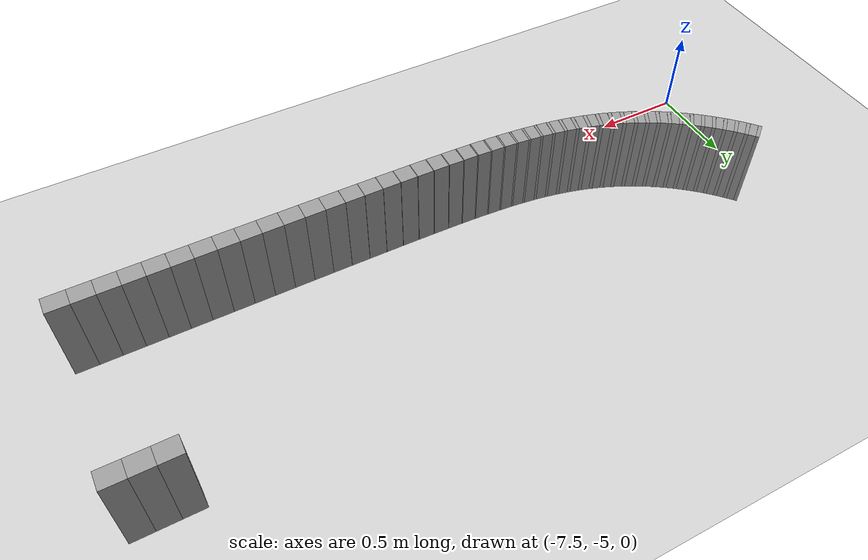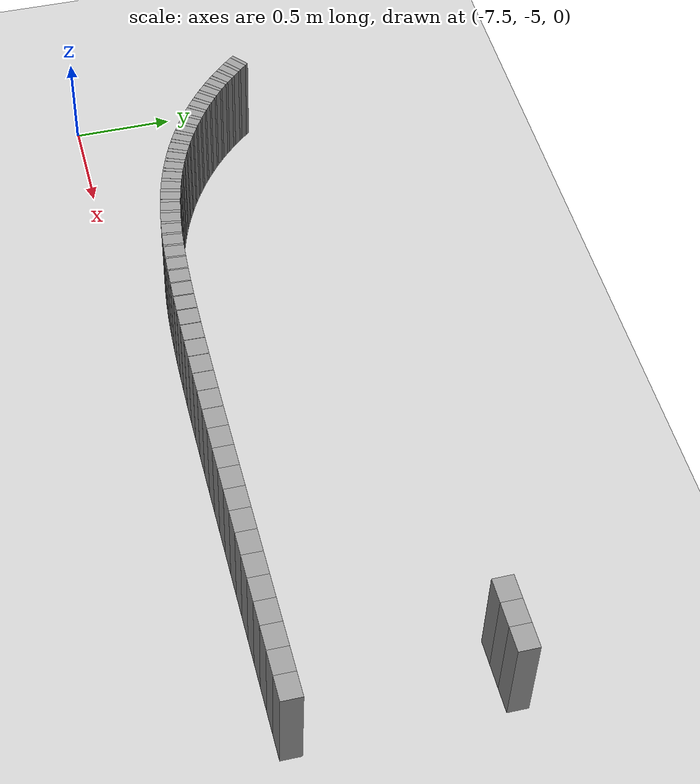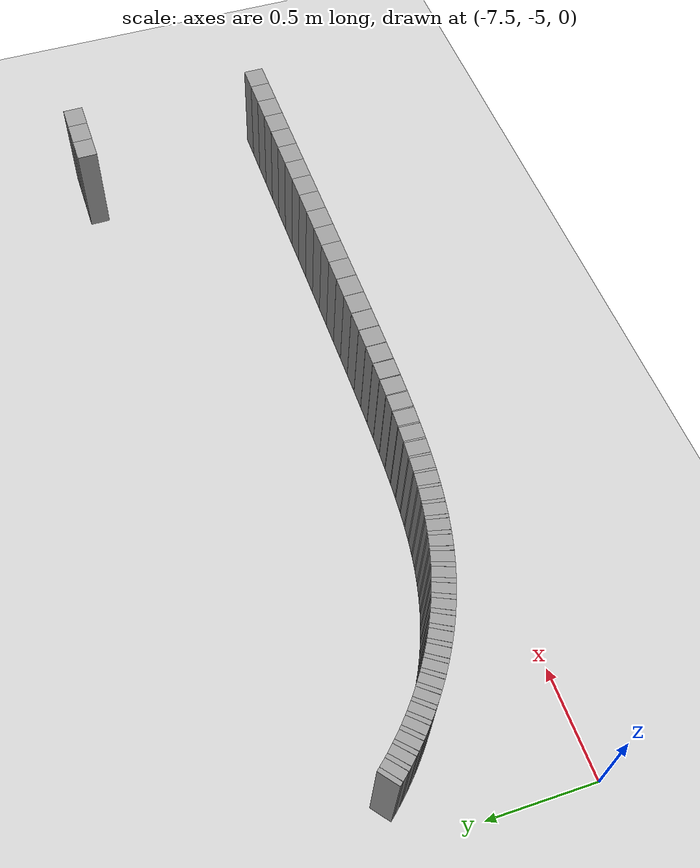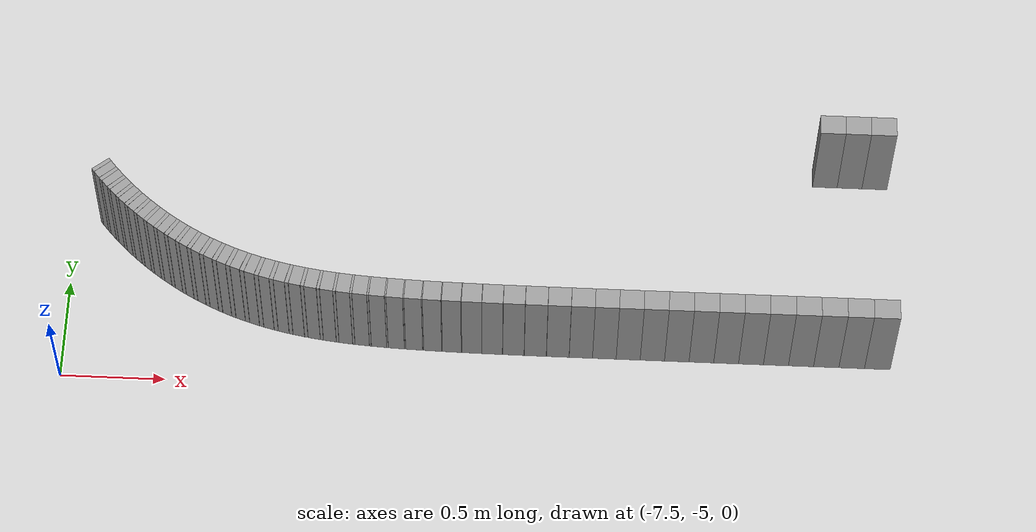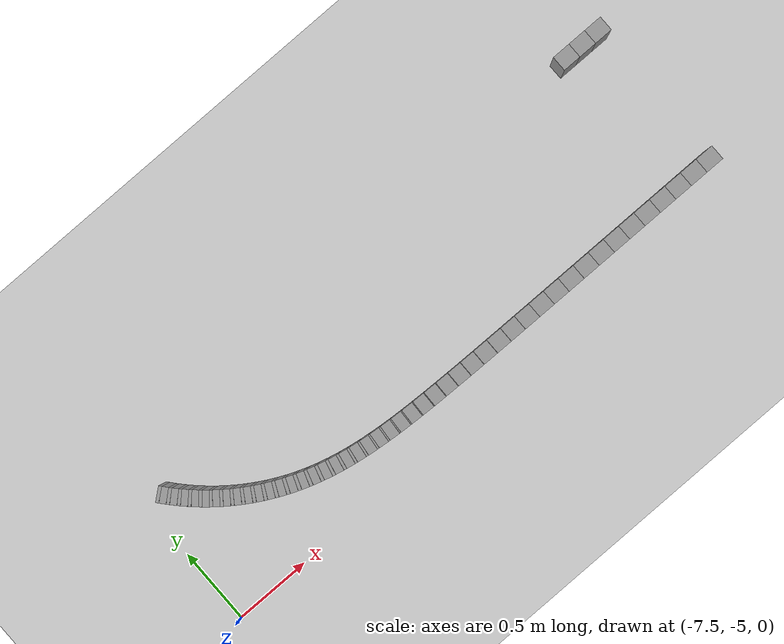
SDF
<sdf version="1.6">
 <world name="default">
  <include><uri>model://ground_plane</uri></include>
  <include><uri>model://sun</uri></include>
  <model name="wall_406_outward">
   <static>true</static>
   <link name="link">
    <collision name="collision">
     <geometry><box><size>0.1226442290712659 0.1 0.5</size></box></geometry>
    </collision>
    <visual name="visual">
     <geometry><box><size>0.1226442290712659 0.1 0.5</size></box></geometry>
     <material>
      <script><uri>file://media/materials/scripts/gazebo.material</uri><name>Gazebo/Gray</name></script>
     </material>
    </visual>
   </link>
   <pose>-3.612444071949023 -4.749999761004553 0.25 0 0 3.1415887562119997</pose>
  </model>
  <model name="wall_407_outward">
   <static>true</static>
   <link name="link">
    <collision name="collision">
     <geometry><box><size>0.12154209195513692 0.1 0.5</size></box></geometry>
    </collision>
    <visual name="visual">
     <geometry><box><size>0.12154209195513692 0.1 0.5</size></box></geometry>
     <material>
      <script><uri>file://media/materials/scripts/gazebo.material</uri><name>Gazebo/Gray</name></script>
     </material>
    </visual>
   </link>
   <pose>-3.734537232460315 -4.749999103092992 0.25 0 0 3.1415857602394053</pose>
  </model>
  <model name="wall_408_outward">
   <static>true</static>
   <link name="link">
    <collision name="collision">
     <geometry><box><size>0.12061847490043894 0.1 0.5</size></box></geometry>
    </collision>
    <visual name="visual">
     <geometry><box><size>0.12061847490043894 0.1 0.5</size></box></geometry>
     <material>
      <script><uri>file://media/materials/scripts/gazebo.material</uri><name>Gazebo/Gray</name></script>
     </material>
    </visual>
   </link>
   <pose>-3.855617515879043 -4.749997725714645 0.25 0 0 3.141576761128311</pose>
  </model>
  <model name="wall_409_outward">
   <static>true</static>
   <link name="link">
    <collision name="collision"><geometry><box><size>0.119868777615004 0.1 0.5</size></box></geometry></collision>
    <visual name="visual">
     <geometry><box><size>0.119868777615004 0.1 0.5</size></box></geometry>
     <material>
      <script><uri>file://media/materials/scripts/gazebo.material</uri><name>Gazebo/Gray</name></script>
     </material>
    </visual>
   </link>
   <pose>-3.975861142100019 -4.749994898639718 0.25 0 0 3.14156147595153</pose>
  </model>
  <model name="wall_410_outward">
   <static>true</static>
   <link name="link">
    <collision name="collision">
     <geometry><box><size>0.11926313200829151 0.1 0.5</size></box></geometry>
    </collision>
    <visual name="visual">
     <geometry><box><size>0.11926313200829151 0.1 0.5</size></box></geometry>
     <material>
      <script><uri>file://media/materials/scripts/gazebo.material</uri><name>Gazebo/Gray</name></script>
     </material>
    </visual>
   </link>
   <pose>-4.095427096787108 -4.749989656429545 0.25 0 0 3.141536079568536</pose>
  </model>
  <model name="wall_411_outward">
   <static>true</static>
   <link name="link">
    <collision name="collision">
     <geometry><box><size>0.1187493419502587 0.1 0.5</size></box></geometry>
    </collision>
    <visual name="visual">
     <geometry><box><size>0.1187493419502587 0.1 0.5</size></box></geometry>
     <material>
      <script><uri>file://media/materials/scripts/gazebo.material</uri><name>Gazebo/Gray</name></script>
     </material>
    </visual>
   </link>
   <pose>-4.214433333386388 -4.749980469748023 0.25 0 0 3.141494748473787</pose>
  </model>
  <model name="wall_412_outward">
   <static>true</static>
   <link name="link">
    <collision name="collision">
     <geometry><box><size>0.11825086844542558 0.1 0.5</size></box></geometry>
    </collision>
    <visual name="visual">
     <geometry><box><size>0.11825086844542558 0.1 0.5</size></box></geometry>
     <material>
      <script><uri>file://media/materials/scripts/gazebo.material</uri><name>Gazebo/Gray</name></script>
     </material>
    </visual>
   </link>
   <pose>-4.332933437544417 -4.749965206332231 0.25 0 0 3.1414328182851423</pose>
  </model>
  <model name="wall_413_outward">
   <static>true</static>
   <link name="link">
    <collision name="collision">
     <geometry><box><size>0.11768797622228513 0.1 0.5</size></box></geometry>
    </collision>
    <visual name="visual">
     <geometry><box><size>0.11768797622228513 0.1 0.5</size></box></geometry>
     <material>
      <script><uri>file://media/materials/scripts/gazebo.material</uri><name>Gazebo/Gray</name></script>
     </material>
    </visual>
   </link>
   <pose>-4.450902857131613 -4.7499404470088775 0.25 0 0 3.141332491213542</pose>
  </model>
  <model name="wall_414_outward">
   <static>true</static>
   <link name="link">
    <collision name="collision">
     <geometry><box><size>0.11696768211186649 0.1 0.5</size></box></geometry>
    </collision>
    <visual name="visual">
     <geometry><box><size>0.11696768211186649 0.1 0.5</size></box></geometry>
     <material>
      <script><uri>file://media/materials/scripts/gazebo.material</uri><name>Gazebo/Gray</name></script>
     </material>
    </visual>
   </link>
   <pose>-4.568230679187927 -4.74990066765837 0.25 0 0 3.141174241269782</pose>
  </model>
  <model name="wall_415_outward">
   <static>true</static>
   <link name="link">
    <collision name="collision">
     <geometry><box><size>0.11600352363583055 0.1 0.5</size></box></geometry>
    </collision>
    <visual name="visual">
     <geometry><box><size>0.11600352363583055 0.1 0.5</size></box></geometry>
     <material>
      <script><uri>file://media/materials/scripts/gazebo.material</uri><name>Gazebo/Gray</name></script>
     </material>
    </visual>
   </link>
   <pose>-4.68471626451435 -4.749838227569707 0.25 0 0 3.1409380229151456</pose>
  </model>
  <model name="wall_416_outward">
   <static>true</static>
   <link name="link">
    <collision name="collision">
     <geometry><box><size>0.11473040872483406 0.1 0.5</size></box></geometry>
    </collision>
    <visual name="visual">
     <geometry><box><size>0.11473040872483406 0.1 0.5</size></box></geometry>
     <material>
      <script><uri>file://media/materials/scripts/gazebo.material</uri><name>Gazebo/Gray</name></script>
     </material>
    </visual>
   </link>
   <pose>-4.800083188940844 -4.749742253048574 0.25 0 0 3.1405815040278804</pose>
  </model>
  <model name="wall_417_outward">
   <static>true</static>
   <link name="link">
    <collision name="collision">
     <geometry><box><size>0.1130895206251351 0.1 0.5</size></box></geometry>
    </collision>
    <visual name="visual">
     <geometry><box><size>0.1130895206251351 0.1 0.5</size></box></geometry>
     <material>
      <script><uri>file://media/materials/scripts/gazebo.material</uri><name>Gazebo/Gray</name></script>
     </material>
    </visual>
   </link>
   <pose>-4.913993058261785 -4.749597835860085 0.25 0 0 3.1400644407143745</pose>
  </model>
  <model name="wall_418_outward">
   <static>true</static>
   <link name="link">
    <collision name="collision">
     <geometry><box><size>0.11106656176824552 0.1 0.5</size></box></geometry>
    </collision>
    <visual name="visual">
     <geometry><box><size>0.11106656176824552 0.1 0.5</size></box></geometry>
     <material>
      <script><uri>file://media/materials/scripts/gazebo.material</uri><name>Gazebo/Gray</name></script>
     </material>
    </visual>
   </link>
   <pose>-5.026070888908 -4.749384728702886 0.25 0 0 3.1393112312071008</pose>
  </model>
  <model name="wall_419_outward">
   <static>true</static>
   <link name="link">
    <collision name="collision">
     <geometry><box><size>0.0005394440741071083 0.1 0.5</size></box></geometry>
    </collision>
    <visual name="visual">
     <geometry><box><size>0.0005394440741071083 0.1 0.5</size></box></geometry>
     <material>
      <script><uri>file://media/materials/scripts/gazebo.material</uri><name>Gazebo/Gray</name></script>
     </material>
    </visual>
   </link>
   <pose>-5.0818737462328825 -4.749257272748892 0.25 0 0 3.1387705077821177</pose>
  </model>
  <model name="wall_420_outward">
   <static>true</static>
   <link name="link">
    <collision name="collision">
     <geometry><box><size>0.10811500317199771 0.1 0.5</size></box></geometry>
    </collision>
    <visual name="visual">
     <geometry><box><size>0.10811500317199771 0.1 0.5</size></box></geometry>
     <material>
      <script><uri>file://media/materials/scripts/gazebo.material</uri><name>Gazebo/Gray</name></script>
     </material>
    </visual>
   </link>
   <pose>-5.136200663349488 -4.749074792745452 0.25 0 0 3.138231063681838</pose>
  </model>
  <model name="wall_421_outward">
   <static>true</static>
   <link name="link">
    <collision name="collision">
     <geometry><box><size>0.0007637287443849621 0.1 0.5</size></box></geometry>
    </collision>
    <visual name="visual">
     <geometry><box><size>0.0007637287443849621 0.1 0.5</size></box></geometry>
     <material>
      <script><uri>file://media/materials/scripts/gazebo.material</uri><name>Gazebo/Gray</name></script>
     </material>
    </visual>
   </link>
   <pose>-5.190639720626006 -4.748891498628139 0.25 0 0 3.1374673348629214</pose>
  </model>
  <model name="wall_422_outward">
   <static>true</static>
   <link name="link">
    <collision name="collision">
     <geometry><box><size>0.10512837446079817 0.1 0.5</size></box></geometry>
    </collision>
    <visual name="visual">
     <geometry><box><size>0.10512837446079817 0.1 0.5</size></box></geometry>
     <material>
      <script><uri>file://media/materials/scripts/gazebo.material</uri><name>Gazebo/Gray</name></script>
     </material>
    </visual>
   </link>
   <pose>-5.243585140765264 -4.748632935533607 0.25 0 0 3.136703606044577</pose>
  </model>
  <model name="wall_423_outward">
   <static>true</static>
   <link name="link">
    <collision name="collision">
     <geometry><box><size>0.0010597760055558734 0.1 0.5</size></box></geometry>
    </collision>
    <visual name="visual">
     <geometry><box><size>0.0010597760055558734 0.1 0.5</size></box></geometry>
     <material>
      <script><uri>file://media/materials/scripts/gazebo.material</uri><name>Gazebo/Gray</name></script>
     </material>
    </visual>
   </link>
   <pose>-5.296678578408492 -4.748372795555109 0.25 0 0 3.135643829840952</pose>
  </model>
  <model name="wall_424_outward">
   <static>true</static>
   <link name="link">
    <collision name="collision">
     <geometry><box><size>0.10176378620653771 0.1 0.5</size></box></geometry>
    </collision>
    <visual name="visual">
     <geometry><box><size>0.10176378620653771 0.1 0.5</size></box></geometry>
     <material>
      <script><uri>file://media/materials/scripts/gazebo.material</uri><name>Gazebo/Gray</name></script>
     </material>
    </visual>
   </link>
   <pose>-5.348089100472373 -4.748013035449224 0.25 0 0 3.1345840536367118</pose>
  </model>
  <model name="wall_425_outward">
   <static>true</static>
   <link name="link">
    <collision name="collision">
     <geometry><box><size>0.0014596354130802164 0.1 0.5</size></box></geometry>
    </collision>
    <visual name="visual">
     <geometry><box><size>0.0014596354130802164 0.1 0.5</size></box></geometry>
     <material>
      <script><uri>file://media/materials/scripts/gazebo.material</uri><name>Gazebo/Gray</name></script>
     </material>
    </visual>
   </link>
   <pose>-5.399699535448133 -4.747650247340457 0.25 0 0 3.133124417705418</pose>
  </model>
  <model name="wall_426_outward">
   <static>true</static>
   <link name="link">
    <collision name="collision">
     <geometry><box><size>0.09807689345486302 0.1 0.5</size></box></geometry>
    </collision>
    <visual name="visual">
     <geometry><box><size>0.09807689345486302 0.1 0.5</size></box></geometry>
     <material>
      <script><uri>file://media/materials/scripts/gazebo.material</uri><name>Gazebo/Gray</name></script>
     </material>
    </visual>
   </link>
   <pose>-5.449465357054769 -4.747157227730128 0.25 0 0 3.1316647817739494</pose>
  </model>
  <model name="wall_427_outward">
   <static>true</static>
   <link name="link">
    <collision name="collision">
     <geometry><box><size>0.001974699509291963 0.1 0.5</size></box></geometry>
    </collision>
    <visual name="visual">
     <geometry><box><size>0.001974699509291963 0.1 0.5</size></box></geometry>
     <material>
      <script><uri>file://media/materials/scripts/gazebo.material</uri><name>Gazebo/Gray</name></script>
     </material>
    </visual>
   </link>
   <pose>-5.499488666938636 -4.746658636589764 0.25 0 0 3.1296900809810806</pose>
  </model>
  <model name="wall_428_outward">
   <static>true</static>
   <link name="link">
    <collision name="collision">
     <geometry><box><size>0.09413779135016857 0.1 0.5</size></box></geometry>
    </collision>
    <visual name="visual">
     <geometry><box><size>0.09413779135016857 0.1 0.5</size></box></geometry>
     <material>
      <script><uri>file://media/materials/scripts/gazebo.material</uri><name>Gazebo/Gray</name></script>
     </material>
    </visual>
   </link>
   <pose>-5.547540310268626 -4.745993717895944 0.25 0 0 3.1277153801886217</pose>
  </model>
  <model name="wall_429_outward">
   <static>true</static>
   <link name="link">
    <collision name="collision">
     <geometry><box><size>0.0026348170594217932 0.1 0.5</size></box></geometry>
    </collision>
    <visual name="visual">
     <geometry><box><size>0.0026348170594217932 0.1 0.5</size></box></geometry>
     <material>
      <script><uri>file://media/materials/scripts/gazebo.material</uri><name>Gazebo/Gray</name></script>
     </material>
    </visual>
   </link>
   <pose>-5.595921902721252 -4.745318798742435 0.25 0 0 3.1250805600807965</pose>
  </model>
  <model name="wall_430_outward">
   <static>true</static>
   <link name="link">
    <collision name="collision">
     <geometry><box><size>0.09002182004686306 0.1 0.5</size></box></geometry>
    </collision>
    <visual name="visual">
     <geometry><box><size>0.09002182004686306 0.1 0.5</size></box></geometry>
     <material>
      <script><uri>file://media/materials/scripts/gazebo.material</uri><name>Gazebo/Gray</name></script>
     </material>
    </visual>
   </link>
   <pose>-5.642241791338714 -4.74443527920889 0.25 0 0 3.122445739972563</pose>
  </model>
  <model name="wall_431_outward">
   <static>true</static>
   <link name="link">
    <collision name="collision">
     <geometry><box><size>0.0034624083891252786 0.1 0.5</size></box></geometry>
    </collision>
    <visual name="visual">
     <geometry><box><size>0.0034624083891252786 0.1 0.5</size></box></geometry>
     <material>
      <script><uri>file://media/materials/scripts/gazebo.material</uri><name>Gazebo/Gray</name></script>
     </material>
    </visual>
   </link>
   <pose>-5.688975212751009 -4.743534373829263 0.25 0 0 3.118983324665279</pose>
  </model>
  <model name="wall_432_outward">
   <static>true</static>
   <link name="link">
    <collision name="collision">
     <geometry><box><size>0.08580625696934902 0.1 0.5</size></box></geometry>
    </collision>
    <visual name="visual">
     <geometry><box><size>0.08580625696934902 0.1 0.5</size></box></geometry>
     <material>
      <script><uri>file://media/materials/scripts/gazebo.material</uri><name>Gazebo/Gray</name></script>
     </material>
    </visual>
   </link>
   <pose>-5.73359452239784 -4.742376803122756 0.25 0 0 3.115520909358139</pose>
  </model>
  <model name="wall_433_outward">
   <static>true</static>
   <link name="link">
    <collision name="collision">
     <geometry><box><size>0.004477659836447134 0.1 0.5</size></box></geometry>
    </collision>
    <visual name="visual">
     <geometry><box><size>0.004477659836447134 0.1 0.5</size></box></geometry>
     <material>
      <script><uri>file://media/materials/scripts/gazebo.material</uri><name>Gazebo/Gray</name></script>
     </material>
    </visual>
   </link>
   <pose>-5.778720855597685 -4.74118998613133 0.25 0 0 3.1110432345591463</pose>
  </model>
  <model name="wall_434_outward">
   <static>true</static>
   <link name="link">
    <collision name="collision">
     <geometry><box><size>0.08157034762116054 0.1 0.5</size></box></geometry>
    </collision>
    <visual name="visual">
     <geometry><box><size>0.08157034762116054 0.1 0.5</size></box></geometry>
     <material>
      <script><uri>file://media/materials/scripts/gazebo.material</uri><name>Gazebo/Gray</name></script>
     </material>
    </visual>
   </link>
   <pose>-5.82171879764277 -4.739693307809548 0.25 0 0 3.1065655597601207</pose>
  </model>
  <model name="wall_435_outward">
   <static>true</static>
   <link name="link">
    <collision name="collision">
     <geometry><box><size>0.005697879549744158 0.1 0.5</size></box></geometry>
    </collision>
    <visual name="visual">
     <geometry><box><size>0.005697879549744158 0.1 0.5</size></box></geometry>
     <material>
      <script><uri>file://media/materials/scripts/gazebo.material</uri><name>Gazebo/Gray</name></script>
     </material>
    </visual>
   </link>
   <pose>-5.865325531982508 -4.738149022787341 0.25 0 0 3.1008676493787455</pose>
  </model>
  <model name="wall_436_outward">
   <static>true</static>
   <link name="link">
    <collision name="collision">
     <geometry><box><size>0.07738684872634141 0.1 0.5</size></box></geometry>
    </collision>
    <visual name="visual">
     <geometry><box><size>0.07738684872634141 0.1 0.5</size></box></geometry>
     <material>
      <script><uri>file://media/materials/scripts/gazebo.material</uri><name>Gazebo/Gray</name></script>
     </material>
    </visual>
   </link>
   <pose>-5.906823847566144 -4.736237415350874 0.25 0 0 3.0951697389975994</pose>
  </model>
  <model name="wall_437_outward">
   <static>true</static>
   <link name="link">
    <collision name="collision">
     <geometry><box><size>0.007120499115169005 0.1 0.5</size></box></geometry>
    </collision>
    <visual name="visual">
     <geometry><box><size>0.007120499115169005 0.1 0.5</size></box></geometry>
     <material>
      <script><uri>file://media/materials/scripts/gazebo.material</uri><name>Gazebo/Gray</name></script>
     </material>
    </visual>
   </link>
   <pose>-5.9490307328992955 -4.7342512618733466 0.25 0 0 3.0880491797111524</pose>
  </model>
  <model name="wall_438_outward">
   <static>true</static>
   <link name="link">
    <collision name="collision">
     <geometry><box><size>0.07332009119316533 0.1 0.5</size></box></geometry>
    </collision>
    <visual name="visual">
     <geometry><box><size>0.07332009119316533 0.1 0.5</size></box></geometry>
     <material>
      <script><uri>file://media/materials/scripts/gazebo.material</uri><name>Gazebo/Gray</name></script>
     </material>
    </visual>
   </link>
   <pose>-5.989178489737703 -4.731838142410279 0.25 0 0 3.0809286204245034</pose>
  </model>
  <model name="wall_439_outward">
   <static>true</static>
   <link name="link">
    <collision name="collision">
     <geometry><box><size>0.008739065632836765 0.1 0.5</size></box></geometry>
    </collision>
    <visual name="visual">
     <geometry><box><size>0.008739065632836765 0.1 0.5</size></box></geometry>
     <material>
      <script><uri>file://media/materials/scripts/gazebo.material</uri><name>Gazebo/Gray</name></script>
     </material>
    </visual>
   </link>
   <pose>-6.030130112690438 -4.729312543798684 0.25 0 0 3.072189443552226</pose>
  </model>
  <model name="wall_440_outward">
   <static>true</static>
   <link name="link">
    <collision name="collision">
     <geometry><box><size>0.0694289672277904 0.1 0.5</size></box></geometry>
    </collision>
    <visual name="visual">
     <geometry><box><size>0.0694289672277904 0.1 0.5</size></box></geometry>
     <material>
      <script><uri>file://media/materials/scripts/gazebo.material</uri><name>Gazebo/Gray</name></script>
     </material>
    </visual>
   </link>
   <pose>-6.069097676313915 -4.7262996148423095 0.25 0 0 3.063450266680009</pose>
  </model>
  <model name="wall_441_outward">
   <static>true</static>
   <link name="link">
    <collision name="collision">
     <geometry><box><size>0.010525468325742653 0.1 0.5</size></box></geometry>
    </collision>
    <visual name="visual">
     <geometry><box><size>0.010525468325742653 0.1 0.5</size></box></geometry>
     <material>
      <script><uri>file://media/materials/scripts/gazebo.material</uri><name>Gazebo/Gray</name></script>
     </material>
    </visual>
   </link>
   <pose>-6.108948286337265 -4.723123676928231 0.25 0 0 3.0529246039997</pose>
  </model>
  <model name="wall_442_outward">
   <static>true</static>
   <link name="link">
    <collision name="collision">
     <geometry><box><size>0.06576145062572974 0.1 0.5</size></box></geometry>
    </collision>
    <visual name="visual">
     <geometry><box><size>0.06576145062572974 0.1 0.5</size></box></geometry>
     <material>
      <script><uri>file://media/materials/scripts/gazebo.material</uri><name>Gazebo/Gray</name></script>
     </material>
    </visual>
   </link>
   <pose>-6.146909440907146 -4.719401436558668 0.25 0 0 3.0423989413194463</pose>
  </model>
  <model name="wall_443_outward">
   <static>true</static>
   <link name="link">
    <collision name="collision">
     <geometry><box><size>0.012420905854956501 0.1 0.5</size></box></geometry>
    </collision>
    <visual name="visual">
     <geometry><box><size>0.012420905854956501 0.1 0.5</size></box></geometry>
     <material>
      <script><uri>file://media/materials/scripts/gazebo.material</uri><name>Gazebo/Gray</name></script>
     </material>
    </visual>
   </link>
   <pose>-6.185800344120741 -4.715453480399512 0.25 0 0 3.029977716061714</pose>
  </model>
  <model name="wall_444_outward">
   <static>true</static>
   <link name="link">
    <collision name="collision">
     <geometry><box><size>0.062358058499031276 0.1 0.5</size></box></geometry>
    </collision>
    <visual name="visual">
     <geometry><box><size>0.062358058499031276 0.1 0.5</size></box></geometry>
     <material>
      <script><uri>file://media/materials/scripts/gazebo.material</uri><name>Gazebo/Gray</name></script>
     </material>
    </visual>
   </link>
   <pose>-6.222911644990965 -4.710904321125753 0.25 0 0 3.017556490803942</pose>
  </model>
  <model name="wall_445_outward">
   <static>true</static>
   <link name="link">
    <collision name="collision">
     <geometry><box><size>0.0143516712152271 0.1 0.5</size></box></geometry>
    </collision>
    <visual name="visual">
     <geometry><box><size>0.0143516712152271 0.1 0.5</size></box></geometry>
     <material>
      <script><uri>file://media/materials/scripts/gazebo.material</uri><name>Gazebo/Gray</name></script>
     </material>
    </visual>
   </link>
   <pose>-6.260958369178862 -4.706057017598841 0.25 0 0 3.0032043268730013</pose>
  </model>
  <model name="wall_446_outward">
   <static>true</static>
   <link name="link">
    <collision name="collision">
     <geometry><box><size>0.05924849096141787 0.1 0.5</size></box></geometry>
    </collision>
    <visual name="visual">
     <geometry><box><size>0.05924849096141787 0.1 0.5</size></box></geometry>
     <material>
      <script><uri>file://media/materials/scripts/gazebo.material</uri><name>Gazebo/Gray</name></script>
     </material>
    </visual>
   </link>
   <pose>-6.297344956013166 -4.700559883848905 0.25 0 0 2.988852162942009</pose>
  </model>
  <model name="wall_447_outward">
   <static>true</static>
   <link name="link">
    <collision name="collision">
     <geometry><box><size>0.01622471187031423 0.1 0.5</size></box></geometry>
    </collision>
    <visual name="visual">
     <geometry><box><size>0.01622471187031423 0.1 0.5</size></box></geometry>
     <material>
      <script><uri>file://media/materials/scripts/gazebo.material</uri><name>Gazebo/Gray</name></script>
     </material>
    </visual>
   </link>
   <pose>-6.334621140448352 -4.694688436546167 0.25 0 0 2.9726267391516656</pose>
  </model>
  <model name="wall_448_outward">
   <static>true</static>
   <link name="link">
    <collision name="collision">
     <geometry><box><size>0.05645104791486263 0.1 0.5</size></box></geometry>
    </collision>
    <visual name="visual">
     <geometry><box><size>0.05645104791486263 0.1 0.5</size></box></geometry>
     <material>
      <script><uri>file://media/materials/scripts/gazebo.material</uri><name>Gazebo/Gray</name></script>
     </material>
    </visual>
   </link>
   <pose>-6.370360866612707 -4.688126942126753 0.25 0 0 2.9564013153614264</pose>
  </model>
  <model name="wall_449_outward">
   <static>true</static>
   <link name="link">
    <collision name="collision">
     <geometry><box><size>0.017935699000256454 0.1 0.5</size></box></geometry>
    </collision>
    <visual name="visual">
     <geometry><box><size>0.017935699000256454 0.1 0.5</size></box></geometry>
     <material>
      <script><uri>file://media/materials/scripts/gazebo.material</uri><name>Gazebo/Gray</name></script>
     </material>
    </visual>
   </link>
   <pose>-6.4068872369937555 -4.681120526304735 0.25 0 0 2.9384646546015856</pose>
  </model>
  <model name="wall_450_outward">
   <static>true</static>
   <link name="link">
    <collision name="collision">
     <geometry><box><size>0.05397611991512603 0.1 0.5</size></box></geometry>
    </collision>
    <visual name="visual">
     <geometry><box><size>0.05397611991512603 0.1 0.5</size></box></geometry>
     <material>
      <script><uri>file://media/materials/scripts/gazebo.material</uri><name>Gazebo/Gray</name></script>
     </material>
    </visual>
   </link>
   <pose>-6.442002004153011 -4.673393774774429 0.25 0 0 2.9205279938416258</pose>
  </model>
  <model name="wall_451_outward">
   <static>true</static>
   <link name="link">
    <collision name="collision"><geometry><box><size>0.019380811000152 0.1 0.5</size></box></geometry></collision>
    <visual name="visual">
     <geometry><box><size>0.019380811000152 0.1 0.5</size></box></geometry>
     <material>
      <script><uri>file://media/materials/scripts/gazebo.material</uri><name>Gazebo/Gray</name></script>
     </material>
    </visual>
   </link>
   <pose>-6.4777449266953955 -4.665168504310368 0.25 0 0 2.9011459693464547</pose>
  </model>
  <model name="wall_452_outward">
   <static>true</static>
   <link name="link">
    <collision name="collision">
     <geometry><box><size>0.05182111224103424 0.1 0.5</size></box></geometry>
    </collision>
    <visual name="visual">
     <geometry><box><size>0.05182111224103424 0.1 0.5</size></box></geometry>
     <material>
      <script><uri>file://media/materials/scripts/gazebo.material</uri><name>Gazebo/Gray</name></script>
     </material>
    </visual>
   </link>
   <pose>-6.512197398085927 -4.656204054327903 0.25 0 0 2.8817639448512513</pose>
  </model>
  <model name="wall_453_outward">
   <static>true</static>
   <link name="link">
    <collision name="collision">
     <geometry><box><size>0.02048245492310293 0.1 0.5</size></box></geometry>
    </collision>
    <visual name="visual">
     <geometry><box><size>0.02048245492310293 0.1 0.5</size></box></geometry>
     <material>
      <script><uri>file://media/materials/scripts/gazebo.material</uri><name>Gazebo/Gray</name></script>
     </material>
    </visual>
   </link>
   <pose>-6.547079742619536 -4.646713945829582 0.25 0 0 2.8612800574870483</pose>
  </model>
  <model name="wall_454_outward">
   <static>true</static>
   <link name="link">
    <collision name="collision">
     <geometry><box><size>0.04997289289818274 0.1 0.5</size></box></geometry>
    </collision>
    <visual name="visual">
     <geometry><box><size>0.04997289289818274 0.1 0.5</size></box></geometry>
     <material>
      <script><uri>file://media/materials/scripts/gazebo.material</uri><name>Gazebo/Gray</name></script>
     </material>
    </visual>
   </link>
   <pose>-6.580785819991203 -4.636477638314604 0.25 0 0 2.840796170122832</pose>
  </model>
  <model name="wall_455_outward">
   <static>true</static>
   <link name="link">
    <collision name="collision">
     <geometry><box><size>0.02119622320769454 0.1 0.5</size></box></geometry>
    </collision>
    <visual name="visual">
     <geometry><box><size>0.02119622320769454 0.1 0.5</size></box></geometry>
     <material>
      <script><uri>file://media/materials/scripts/gazebo.material</uri><name>Gazebo/Gray</name></script>
     </material>
    </visual>
   </link>
   <pose>-6.61470382951005 -4.62572076073259 0.25 0 0 2.819598359421398</pose>
  </model>
  <model name="wall_456_outward">
   <static>true</static>
   <link name="link">
    <collision name="collision">
     <geometry><box><size>0.048408735714044845 0.1 0.5</size></box></geometry>
    </collision>
    <visual name="visual">
     <geometry><box><size>0.048408735714044845 0.1 0.5</size></box></geometry>
     <material>
      <script><uri>file://media/materials/scripts/gazebo.material</uri><name>Gazebo/Gray</name></script>
     </material>
    </visual>
   </link>
   <pose>-6.6475501621447055 -4.614222250107741 0.25 0 0 2.7984005487199664</pose>
  </model>
  <model name="wall_457_outward">
   <static>true</static>
   <link name="link">
    <collision name="collision">
     <geometry><box><size>0.021535584044037374 0.1 0.5</size></box></geometry>
    </collision>
    <visual name="visual">
     <geometry><box><size>0.021535584044037374 0.1 0.5</size></box></geometry>
     <material>
      <script><uri>file://media/materials/scripts/gazebo.material</uri><name>Gazebo/Gray</name></script>
     </material>
    </visual>
   </link>
   <pose>-6.680402550740261 -4.602236773816573 0.25 0 0 2.776863299694594</pose>
  </model>
  <model name="wall_458_outward">
   <static>true</static>
   <link name="link">
    <collision name="collision">
     <geometry><box><size>0.04709637859450541 0.1 0.5</size></box></geometry>
    </collision>
    <visual name="visual">
     <geometry><box><size>0.04709637859450541 0.1 0.5</size></box></geometry>
     <material>
      <script><uri>file://media/materials/scripts/gazebo.material</uri><name>Gazebo/Gray</name></script>
     </material>
    </visual>
   </link>
   <pose>-6.712275246924083 -4.589524567048908 0.25 0 0 2.755326050669247</pose>
  </model>
  <model name="wall_459_outward">
   <static>true</static>
   <link name="link">
    <collision name="collision">
     <geometry><box><size>0.021518034416325417 0.1 0.5</size></box></geometry>
    </collision>
    <visual name="visual">
     <geometry><box><size>0.021518034416325417 0.1 0.5</size></box></geometry>
     <material>
      <script><uri>file://media/materials/scripts/gazebo.material</uri><name>Gazebo/Gray</name></script>
     </material>
    </visual>
   </link>
   <pose>-6.743965241159584 -4.576386402797362 0.25 0 0 2.7338063553393015</pose>
  </model>
  <model name="wall_460_outward">
   <static>true</static>
   <link name="link">
    <collision name="collision">
     <geometry><box><size>0.04600035570127507 0.1 0.5</size></box></geometry>
    </collision>
    <visual name="visual">
     <geometry><box><size>0.04600035570127507 0.1 0.5</size></box></geometry>
     <material>
      <script><uri>file://media/materials/scripts/gazebo.material</uri><name>Gazebo/Gray</name></script>
     </material>
    </visual>
   </link>
   <pose>-6.7747550525414635 -4.562546020838253 0.25 0 0 2.712286660009337</pose>
  </model>
  <model name="wall_461_outward">
   <static>true</static>
   <link name="link">
    <collision name="collision">
     <geometry><box><size>0.021263498935180238 0.1 0.5</size></box></geometry>
    </collision>
    <visual name="visual">
     <geometry><box><size>0.021263498935180238 0.1 0.5</size></box></geometry>
     <material>
      <script><uri>file://media/materials/scripts/gazebo.material</uri><name>Gazebo/Gray</name></script>
     </material>
    </visual>
   </link>
   <pose>-6.805238761055633 -4.5483425185944935 0.25 0 0 2.6910215584144845</pose>
  </model>
  <model name="wall_462_outward">
   <static>true</static>
   <link name="link">
    <collision name="collision">
     <geometry><box><size>0.04508403085146175 0.1 0.5</size></box></geometry>
    </collision>
    <visual name="visual">
     <geometry><box><size>0.04508403085146175 0.1 0.5</size></box></geometry>
     <material>
      <script><uri>file://media/materials/scripts/gazebo.material</uri><name>Gazebo/Gray</name></script>
     </material>
    </visual>
   </link>
   <pose>-6.834888413055751 -4.533466751665285 0.25 0 0 2.669756456819581</pose>
  </model>
  <model name="wall_463_outward">
   <static>true</static>
   <link name="link">
    <collision name="collision">
     <geometry><box><size>0.02084901044062715 0.1 0.5</size></box></geometry>
    </collision>
    <visual name="visual">
     <geometry><box><size>0.02084901044062715 0.1 0.5</size></box></geometry>
     <material>
      <script><uri>file://media/materials/scripts/gazebo.material</uri><name>Gazebo/Gray</name></script>
     </material>
    </visual>
   </link>
   <pose>-6.864152048771932 -4.518290159438777 0.25 0 0 2.648905935637797</pose>
  </model>
  <model name="wall_464_outward">
   <static>true</static>
   <link name="link">
    <collision name="collision">
     <geometry><box><size>0.04431043997942537 0.1 0.5</size></box></geometry>
    </collision>
    <visual name="visual">
     <geometry><box><size>0.04431043997942537 0.1 0.5</size></box></geometry>
     <material>
      <script><uri>file://media/materials/scripts/gazebo.material</uri><name>Gazebo/Gray</name></script>
     </material>
    </visual>
   </link>
   <pose>-6.89263418597959 -4.502475421022704 0.25 0 0 2.6280554144560564</pose>
  </model>
  <model name="wall_465_outward">
   <static>true</static>
   <link name="link">
    <collision name="collision">
     <geometry><box><size>0.020391296967531912 0.1 0.5</size></box></geometry>
    </collision>
    <visual name="visual">
     <geometry><box><size>0.020391296967531912 0.1 0.5</size></box></geometry>
     <material>
      <script><uri>file://media/materials/scripts/gazebo.material</uri><name>Gazebo/Gray</name></script>
     </material>
    </visual>
   </link>
   <pose>-6.920708207846108 -4.48640264737945 0.25 0 0 2.6076627040902154</pose>
  </model>
  <model name="wall_466_outward">
   <static>true</static>
   <link name="link">
    <collision name="collision">
     <geometry><box><size>0.043650243055167494 0.1 0.5</size></box></geometry>
    </collision>
    <visual name="visual">
     <geometry><box><size>0.043650243055167494 0.1 0.5</size></box></geometry>
     <material>
      <script><uri>file://media/materials/scripts/gazebo.material</uri><name>Gazebo/Gray</name></script>
     </material>
    </visual>
   </link>
   <pose>-6.94804172762161 -4.469725840918735 0.25 0 0 2.5872699937243313</pose>
  </model>
  <model name="wall_467_outward">
   <static>true</static>
   <link name="link">
    <collision name="collision">
     <geometry><box><size>0.019961366389059227 0.1 0.5</size></box></geometry>
    </collision>
    <visual name="visual">
     <geometry><box><size>0.019961366389059227 0.1 0.5</size></box></geometry>
     <material>
      <script><uri>file://media/materials/scripts/gazebo.material</uri><name>Gazebo/Gray</name></script>
     </material>
    </visual>
   </link>
   <pose>-6.974978282947118 -4.452815950410027 0.25 0 0 2.5673073014760255</pose>
  </model>
  <model name="wall_468_outward">
   <static>true</static>
   <link name="link">
    <collision name="collision">
     <geometry><box><size>0.04308242605588207 0.1 0.5</size></box></geometry>
    </collision>
    <visual name="visual">
     <geometry><box><size>0.04308242605588207 0.1 0.5</size></box></geometry>
     <material>
      <script><uri>file://media/materials/scripts/gazebo.material</uri><name>Gazebo/Gray</name></script>
     </material>
    </visual>
   </link>
   <pose>-7.001206269643279 -4.435333474032128 0.25 0 0 2.547344609227676</pose>
  </model>
  <model name="wall_469_outward">
   <static>true</static>
   <link name="link">
    <collision name="collision">
     <geometry><box><size>0.01965156754185864 0.1 0.5</size></box></geometry>
    </collision>
    <visual name="visual">
     <geometry><box><size>0.01965156754185864 0.1 0.5</size></box></geometry>
     <material>
      <script><uri>file://media/materials/scripts/gazebo.material</uri><name>Gazebo/Gray</name></script>
     </material>
    </visual>
   </link>
   <pose>-7.027086332407682 -4.4176126080222655 0.25 0 0 2.527691776612108</pose>
  </model>
  <model name="wall_470_outward">
   <static>true</static>
   <link name="link">
    <collision name="collision">
     <geometry><box><size>0.04259504141084334 0.1 0.5</size></box></geometry>
    </collision>
    <visual name="visual">
     <geometry><box><size>0.04259504141084334 0.1 0.5</size></box></geometry>
     <material>
      <script><uri>file://media/materials/scripts/gazebo.material</uri><name>Gazebo/Gray</name></script>
     </material>
    </visual>
   </link>
   <pose>-7.052282282319835 -4.3993439636556095 0.25 0 0 2.508038943996542</pose>
  </model>
  <model name="wall_471_outward">
   <static>true</static>
   <link name="link">
    <collision name="collision">
     <geometry><box><size>0.019461050147630266 0.1 0.5</size></box></geometry>
    </collision>
    <visual name="visual">
     <geometry><box><size>0.019461050147630266 0.1 0.5</size></box></geometry>
     <material>
      <script><uri>file://media/materials/scripts/gazebo.material</uri><name>Gazebo/Gray</name></script>
     </material>
    </visual>
   </link>
   <pose>-7.077175084458926 -4.380823447137853 0.25 0 0 2.488576665217582</pose>
  </model>
  <model name="wall_472_outward">
   <static>true</static>
   <link name="link">
    <collision name="collision">
     <geometry><box><size>0.042189051688043974 0.1 0.5</size></box></geometry>
    </collision>
    <visual name="visual">
     <geometry><box><size>0.042189051688043974 0.1 0.5</size></box></geometry>
     <material>
      <script><uri>file://media/materials/scripts/gazebo.material</uri><name>Gazebo/Gray</name></script>
     </material>
    </visual>
   </link>
   <pose>-7.101405433941949 -4.361770988458703 0.25 0 0 2.4691143864386027</pose>
  </model>
  <model name="wall_473_outward">
   <static>true</static>
   <link name="link">
    <collision name="collision">
     <geometry><box><size>0.019421396014469863 0.1 0.5</size></box></geometry>
    </collision>
    <visual name="visual">
     <geometry><box><size>0.019421396014469863 0.1 0.5</size></box></geometry>
     <material>
      <script><uri>file://media/materials/scripts/gazebo.material</uri><name>Gazebo/Gray</name></script>
     </material>
    </visual>
   </link>
   <pose>-7.125384839595291 -4.342435201713535 0.25 0 0 2.4496917692887443</pose>
  </model>
  <model name="wall_474_outward">
   <static>true</static>
   <link name="link">
    <collision name="collision">
     <geometry><box><size>0.04187325228582937 0.1 0.5</size></box></geometry>
    </collision>
    <visual name="visual">
     <geometry><box><size>0.04187325228582937 0.1 0.5</size></box></geometry>
     <material>
      <script><uri>file://media/materials/scripts/gazebo.material</uri><name>Gazebo/Gray</name></script>
     </material>
    </visual>
   </link>
   <pose>-7.148721876516705 -4.322571554220788 0.25 0 0 2.430269152138945</pose>
  </model>
  <model name="wall_475_outward">
   <static>true</static>
   <link name="link">
    <collision name="collision">
     <geometry><box><size>0.019506469535852337 0.1 0.5</size></box></geometry>
    </collision>
    <visual name="visual">
     <geometry><box><size>0.019506469535852337 0.1 0.5</size></box></geometry>
     <material>
      <script><uri>file://media/materials/scripts/gazebo.material</uri><name>Gazebo/Gray</name></script>
     </material>
    </visual>
   </link>
   <pose>-7.1718437916931705 -4.302393177294222 0.25 0 0 2.4107614453482844</pose>
  </model>
  <model name="wall_476_outward">
   <static>true</static>
   <link name="link">
    <collision name="collision">
     <geometry><box><size>0.04166628935089845 0.1 0.5</size></box></geometry>
    </collision>
    <visual name="visual">
     <geometry><box><size>0.04166628935089845 0.1 0.5</size></box></geometry>
     <material>
      <script><uri>file://media/materials/scripts/gazebo.material</uri><name>Gazebo/Gray</name></script>
     </material>
    </visual>
   </link>
   <pose>-7.194344810144421 -4.281677158027199 0.25 0 0 2.3912537385576598</pose>
  </model>
  <model name="wall_477_outward">
   <static>true</static>
   <link name="link">
    <collision name="collision">
     <geometry><box><size>0.019677047604361772 0.1 0.5</size></box></geometry>
    </collision>
    <visual name="visual">
     <geometry><box><size>0.019677047604361772 0.1 0.5</size></box></geometry>
     <material>
      <script><uri>file://media/materials/scripts/gazebo.material</uri><name>Gazebo/Gray</name></script>
     </material>
    </visual>
   </link>
   <pose>-7.216646439692577 -4.260622248897262 0.25 0 0 2.371575420951744</pose>
  </model>
  <model name="wall_478_outward">
   <static>true</static>
   <link name="link">
    <collision name="collision">
     <geometry><box><size>0.04159225527585135 0.1 0.5</size></box></geometry>
    </collision>
    <visual name="visual">
     <geometry><box><size>0.04159225527585135 0.1 0.5</size></box></geometry>
     <material>
      <script><uri>file://media/materials/scripts/gazebo.material</uri><name>Gazebo/Gray</name></script>
     </material>
    </visual>
   </link>
   <pose>-7.238351256733859 -4.239005043738942 0.25 0 0 2.3518971033459115</pose>
  </model>
  <model name="wall_479_outward">
   <static>true</static>
   <link name="link">
    <collision name="collision">
     <geometry><box><size>0.019869727593943506 0.1 0.5</size></box></geometry>
    </collision>
    <visual name="visual">
     <geometry><box><size>0.019869727593943506 0.1 0.5</size></box></geometry>
     <material>
      <script><uri>file://media/materials/scripts/gazebo.material</uri><name>Gazebo/Gray</name></script>
     </material>
    </visual>
   </link>
   <pose>-7.259846201685027 -4.217044178580965 0.25 0 0 2.332026068071438</pose>
  </model>
  <model name="wall_480_outward">
   <static>true</static>
   <link name="link">
    <collision name="collision">
     <geometry><box><size>0.041680332072145845 0.1 0.5</size></box></geometry>
    </collision>
    <visual name="visual">
     <geometry><box><size>0.041680332072145845 0.1 0.5</size></box></geometry>
     <material>
      <script><uri>file://media/materials/scripts/gazebo.material</uri><name>Gazebo/Gray</name></script>
     </material>
    </visual>
   </link>
   <pose>-7.280772562060159 -4.194480753479864 0.25 0 0 2.3121550327969453</pose>
  </model>
  <model name="wall_481_outward">
   <static>true</static>
   <link name="link">
    <collision name="collision">
     <geometry><box><size>0.01999597478271108 0.1 0.5</size></box></geometry>
    </collision>
    <visual name="visual">
     <geometry><box><size>0.01999597478271108 0.1 0.5</size></box></geometry>
     <material>
      <script><uri>file://media/materials/scripts/gazebo.material</uri><name>Gazebo/Gray</name></script>
     </material>
    </visual>
   </link>
   <pose>-7.301448477876594 -4.171602491017574 0.25 0 0 2.2921577252459846</pose>
  </model>
  <model name="wall_482_outward">
   <static>true</static>
   <link name="link">
    <collision name="collision">
     <geometry><box><size>0.041957874386534845 0.1 0.5</size></box></geometry>
    </collision>
    <visual name="visual">
     <geometry><box><size>0.041957874386534845 0.1 0.5</size></box></geometry>
     <material>
      <script><uri>file://media/materials/scripts/gazebo.material</uri><name>Gazebo/Gray</name></script>
     </material>
    </visual>
   </link>
   <pose>-7.321588101855264 -4.148067803230346 0.25 0 0 2.272160417695002</pose>
  </model>
  <model name="wall_483_outward">
   <static>true</static>
   <link name="link">
    <collision name="collision">
     <geometry><box><size>0.02005881086614449 0.1 0.5</size></box></geometry>
    </collision>
    <visual name="visual">
     <geometry><box><size>0.02005881086614449 0.1 0.5</size></box></geometry>
     <material>
      <script><uri>file://media/materials/scripts/gazebo.material</uri><name>Gazebo/Gray</name></script>
     </material>
    </visual>
   </link>
   <pose>-7.3414415629600756 -4.124250315372191 0.25 0 0 2.252100261455123</pose>
  </model>
  <model name="wall_254_inward">
   <static>true</static>
   <link name="link">
    <collision name="collision">
     <geometry><box><size>0.12264055696691509 0.1 0.5</size></box></geometry>
    </collision>
    <visual name="visual">
     <geometry><box><size>0.12264055696691509 0.1 0.5</size></box></geometry>
     <material>
      <script><uri>file://media/materials/scripts/gazebo.material</uri><name>Gazebo/Gray</name></script>
     </material>
    </visual>
   </link>
   <pose>-3.612441261533905 -3.7499997610098097 0.25 0 0 3.1415887561810405</pose>
  </model>
  <model name="wall_255_inward">
   <static>true</static>
   <link name="link">
    <collision name="collision">
     <geometry><box><size>0.12153759529256565 0.1 0.5</size></box></geometry>
    </collision>
    <visual name="visual">
     <geometry><box><size>0.12153759529256565 0.1 0.5</size></box></geometry>
     <material>
      <script><uri>file://media/materials/scripts/gazebo.material</uri><name>Gazebo/Gray</name></script>
     </material>
    </visual>
   </link>
   <pose>-3.7345303376617363 -3.749999103117883 0.25 0 0 3.141585760220938</pose>
  </model>
  <model name="wall_256_inward">
   <static>true</static>
   <link name="link">
    <collision name="collision">
     <geometry><box><size>0.12060790401514726 0.1 0.5</size></box></geometry>
    </collision>
    <visual name="visual">
     <geometry><box><size>0.12060790401514726 0.1 0.5</size></box></geometry>
     <material>
      <script><uri>file://media/materials/scripts/gazebo.material</uri><name>Gazebo/Gray</name></script>
     </material>
    </visual>
   </link>
   <pose>-3.855603087306533 -3.749997725827789 0.25 0 0 3.141576760960458</pose>
  </model>
 </world>
</sdf>
